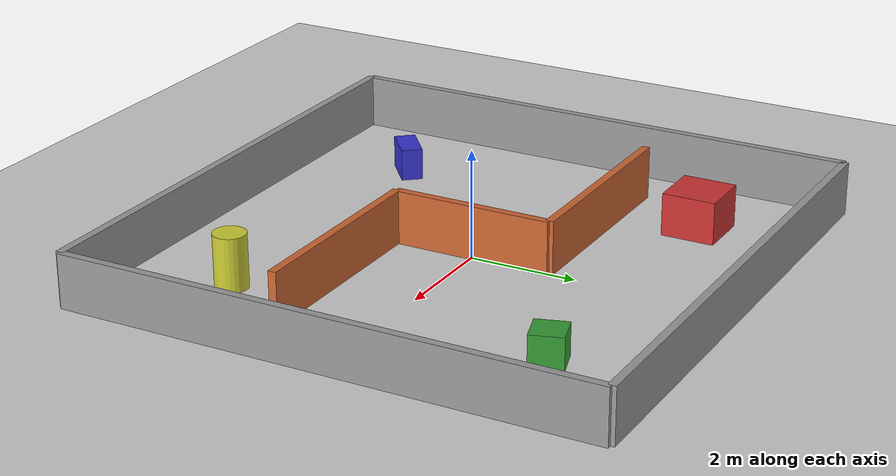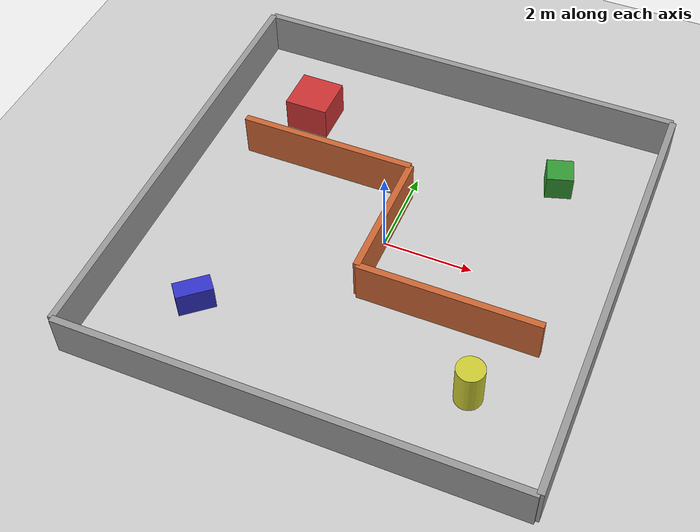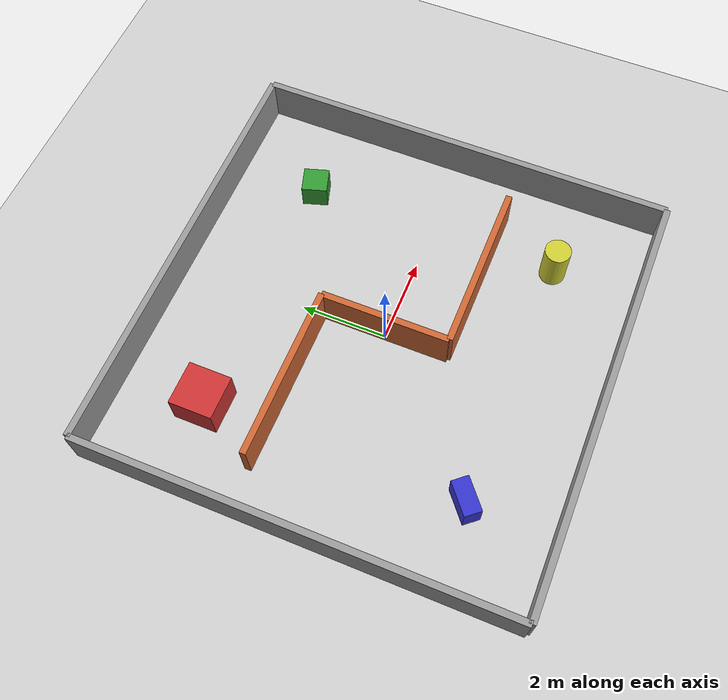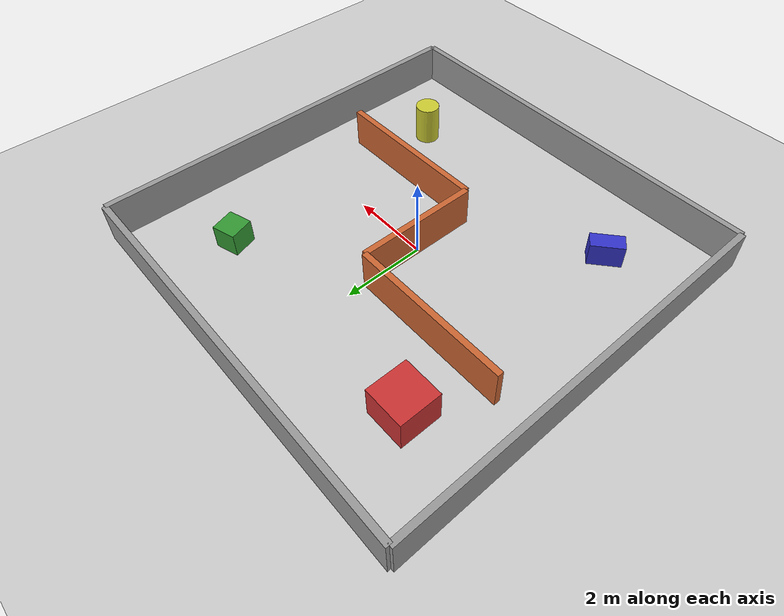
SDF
<?xml version="1.0"?>
<!--
  Obstacle world for SLAM mapping practice.
  A walled area with interior walls and boxes to create an interesting map.
-->
<sdf version="1.6">
  <world name="obstacles">

    <include>
      <uri>model://sun</uri>
    </include>

    <include>
      <uri>model://ground_plane</uri>
    </include>

    <physics type="ode">
      <max_step_size>0.001</max_step_size>
      <real_time_factor>1.0</real_time_factor>
      <real_time_update_rate>1000</real_time_update_rate>
    </physics>

    <gui fullscreen="0">
      <camera name="user_camera">
        <pose>0 0 18 0 1.5707 0</pose>
      </camera>
    </gui>

    <!-- ========== Outer walls (10 m × 10 m arena) ========== -->

    <!-- North wall -->
    <model name="wall_north">
      <static>true</static>
      <pose>0 5 0.5 0 0 0</pose>
      <link name="link">
        <collision name="collision">
          <geometry><box><size>10 0.15 1.0</size></box></geometry>
        </collision>
        <visual name="visual">
          <geometry><box><size>10 0.15 1.0</size></box></geometry>
          <material><ambient>0.6 0.6 0.6 1</ambient></material>
        </visual>
      </link>
    </model>

    <!-- South wall -->
    <model name="wall_south">
      <static>true</static>
      <pose>0 -5 0.5 0 0 0</pose>
      <link name="link">
        <collision name="collision">
          <geometry><box><size>10 0.15 1.0</size></box></geometry>
        </collision>
        <visual name="visual">
          <geometry><box><size>10 0.15 1.0</size></box></geometry>
          <material><ambient>0.6 0.6 0.6 1</ambient></material>
        </visual>
      </link>
    </model>

    <!-- East wall -->
    <model name="wall_east">
      <static>true</static>
      <pose>5 0 0.5 0 0 0</pose>
      <link name="link">
        <collision name="collision">
          <geometry><box><size>0.15 10 1.0</size></box></geometry>
        </collision>
        <visual name="visual">
          <geometry><box><size>0.15 10 1.0</size></box></geometry>
          <material><ambient>0.6 0.6 0.6 1</ambient></material>
        </visual>
      </link>
    </model>

    <!-- West wall -->
    <model name="wall_west">
      <static>true</static>
      <pose>-5 0 0.5 0 0 0</pose>
      <link name="link">
        <collision name="collision">
          <geometry><box><size>0.15 10 1.0</size></box></geometry>
        </collision>
        <visual name="visual">
          <geometry><box><size>0.15 10 1.0</size></box></geometry>
          <material><ambient>0.6 0.6 0.6 1</ambient></material>
        </visual>
      </link>
    </model>

    <!-- ========== Interior walls / corridors ========== -->

    <model name="inner_wall_1">
      <static>true</static>
      <pose>-2 1.5 0.5 0 0 0</pose>
      <link name="link">
        <collision name="collision">
          <geometry><box><size>4 0.15 1.0</size></box></geometry>
        </collision>
        <visual name="visual">
          <geometry><box><size>4 0.15 1.0</size></box></geometry>
          <material><ambient>0.8 0.4 0.2 1</ambient></material>
        </visual>
      </link>
    </model>

    <model name="inner_wall_2">
      <static>true</static>
      <pose>2 -1.5 0.5 0 0 0</pose>
      <link name="link">
        <collision name="collision">
          <geometry><box><size>4 0.15 1.0</size></box></geometry>
        </collision>
        <visual name="visual">
          <geometry><box><size>4 0.15 1.0</size></box></geometry>
          <material><ambient>0.8 0.4 0.2 1</ambient></material>
        </visual>
      </link>
    </model>

    <model name="inner_wall_3">
      <static>true</static>
      <pose>0 0 0.5 0 0 1.5708</pose>
      <link name="link">
        <collision name="collision">
          <geometry><box><size>3 0.15 1.0</size></box></geometry>
        </collision>
        <visual name="visual">
          <geometry><box><size>3 0.15 1.0</size></box></geometry>
          <material><ambient>0.8 0.4 0.2 1</ambient></material>
        </visual>
      </link>
    </model>

    <!-- ========== Obstacle boxes ========== -->

    <model name="box_1">
      <static>true</static>
      <pose>3 3 0.3 0 0 0.3</pose>
      <link name="link">
        <collision name="collision">
          <geometry><box><size>0.6 0.6 0.6</size></box></geometry>
        </collision>
        <visual name="visual">
          <geometry><box><size>0.6 0.6 0.6</size></box></geometry>
          <material><ambient>0.2 0.6 0.2 1</ambient></material>
        </visual>
      </link>
    </model>

    <model name="box_2">
      <static>true</static>
      <pose>-3 -3 0.3 0 0 0.7</pose>
      <link name="link">
        <collision name="collision">
          <geometry><box><size>0.8 0.4 0.6</size></box></geometry>
        </collision>
        <visual name="visual">
          <geometry><box><size>0.8 0.4 0.6</size></box></geometry>
          <material><ambient>0.2 0.2 0.8 1</ambient></material>
        </visual>
      </link>
    </model>

    <model name="box_3">
      <static>true</static>
      <pose>-3 3 0.4 0 0 0</pose>
      <link name="link">
        <collision name="collision">
          <geometry><box><size>1.0 1.0 0.8</size></box></geometry>
        </collision>
        <visual name="visual">
          <geometry><box><size>1.0 1.0 0.8</size></box></geometry>
          <material><ambient>0.8 0.2 0.2 1</ambient></material>
        </visual>
      </link>
    </model>

    <model name="cylinder_1">
      <static>true</static>
      <pose>3 -3 0.5 0 0 0</pose>
      <link name="link">
        <collision name="collision">
          <geometry><cylinder><radius>0.3</radius><length>1.0</length></cylinder></geometry>
        </collision>
        <visual name="visual">
          <geometry><cylinder><radius>0.3</radius><length>1.0</length></cylinder></geometry>
          <material><ambient>0.8 0.8 0.2 1</ambient></material>
        </visual>
      </link>
    </model>

  </world>
</sdf>
